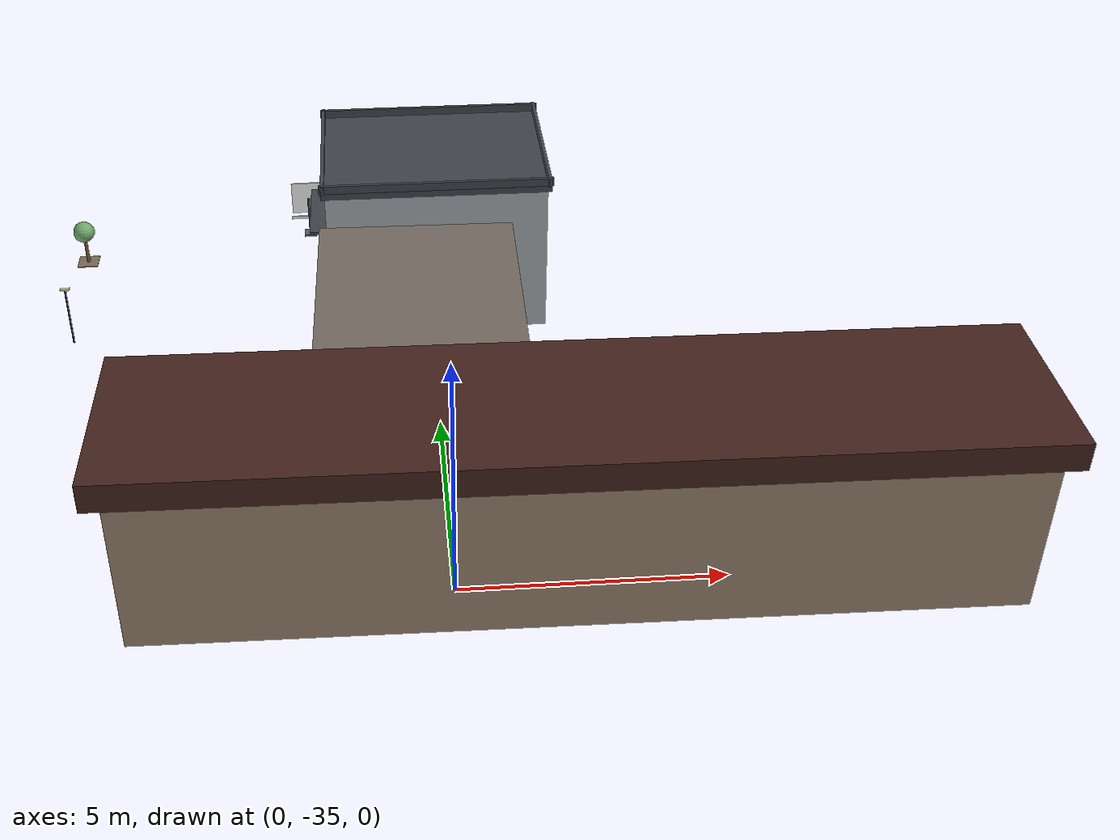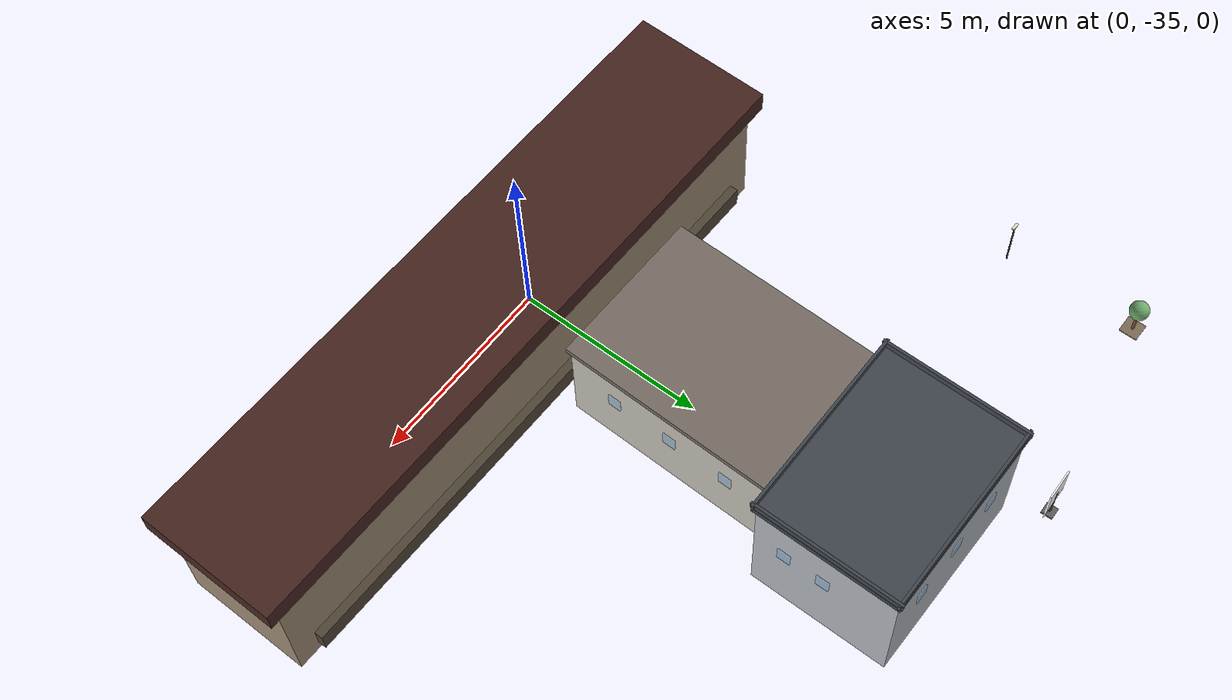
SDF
<sdf version="1.10">
 <world name="city">
  <model name="warehouse_east">
   <static>true</static>
   <pose>-0.351175260543823 -29.409130859375 0 0 0 -1.58832997653702</pose>
   <link name="link">
    <collision name="body_col">
     <pose>0 0 1.3 0 0 0</pose>
     <geometry><box><size>5.6 4 2.6</size></box></geometry>
    </collision>
    <visual name="body_vis">
     <pose>0 0 1.3 0 0 0</pose>
     <geometry><box><size>5.6 4 2.6</size></box></geometry>
     <material>
      <ambient>0.75999999 0.74000001 0.699999988 1</ambient>
      <diffuse>0.75999999 0.74000001 0.699999988 1</diffuse>
      <specular>0.0799999982 0.0799999982 0.0799999982 1</specular>
     </material>
    </visual>
    <collision name="roof_col">
     <pose>0 0 2.67 0 0 0</pose>
     <geometry><box><size>5.76 4.16 0.14</size></box></geometry>
    </collision>
    <visual name="roof_vis">
     <pose>0 0 2.67 0 0 0</pose>
     <geometry><box><size>5.76 4.16 0.14</size></box></geometry>
     <material>
      <ambient>0.479999989 0.439999998 0.400000006 1</ambient>
      <diffuse>0.479999989 0.439999998 0.400000006 1</diffuse>
      <specular>0.0799999982 0.0799999982 0.0799999982 1</specular>
     </material>
    </visual>
    <visual name="door_vis">
     <pose>-2.816 0 0.48 0 0 0</pose>
     <geometry><box><size>0.04 0.52 0.96</size></box></geometry>
     <material>
      <ambient>0.319999993 0.219999999 0.159999996 1</ambient>
      <diffuse>0.319999993 0.219999999 0.159999996 1</diffuse>
      <specular>0.0799999982 0.0799999982 0.0799999982 1</specular>
     </material>
    </visual>
    <visual name="win_west_0">
     <pose>-2.812 -1.12 1.612 0 0 0</pose>
     <geometry><box><size>0.032 0.34 0.4</size></box></geometry>
     <material>
      <ambient>0.550000012 0.720000029 0.879999995 0.550000012</ambient>
      <diffuse>0.550000012 0.720000029 0.879999995 0.550000012</diffuse>
      <specular>0.0799999982 0.0799999982 0.0799999982 1</specular>
      <transparency>0.35</transparency>
     </material>
    </visual>
    <visual name="win_west_1">
     <pose>-2.812 0 1.612 0 0 0</pose>
     <geometry><box><size>0.032 0.34 0.4</size></box></geometry>
     <material>
      <ambient>0.550000012 0.720000029 0.879999995 0.550000012</ambient>
      <diffuse>0.550000012 0.720000029 0.879999995 0.550000012</diffuse>
      <specular>0.0799999982 0.0799999982 0.0799999982 1</specular>
      <transparency>0.35</transparency>
     </material>
    </visual>
    <visual name="win_west_2">
     <pose>-2.812 1.12 1.612 0 0 0</pose>
     <geometry><box><size>0.032 0.34 0.4</size></box></geometry>
     <material>
      <ambient>0.550000012 0.720000029 0.879999995 0.550000012</ambient>
      <diffuse>0.550000012 0.720000029 0.879999995 0.550000012</diffuse>
      <specular>0.0799999982 0.0799999982 0.0799999982 1</specular>
      <transparency>0.35</transparency>
     </material>
    </visual>
    <visual name="win_south_0">
     <pose>-1.568 -2.012 1.612 0 0 0</pose>
     <geometry><box><size>0.34 0.032 0.4</size></box></geometry>
     <material>
      <ambient>0.550000012 0.720000029 0.879999995 0.550000012</ambient>
      <diffuse>0.550000012 0.720000029 0.879999995 0.550000012</diffuse>
      <specular>0.0799999982 0.0799999982 0.0799999982 1</specular>
      <transparency>0.35</transparency>
     </material>
    </visual>
    <visual name="win_south_1">
     <pose>0 -2.012 1.612 0 0 0</pose>
     <geometry><box><size>0.34 0.032 0.4</size></box></geometry>
     <material>
      <ambient>0.550000012 0.720000029 0.879999995 0.550000012</ambient>
      <diffuse>0.550000012 0.720000029 0.879999995 0.550000012</diffuse>
      <specular>0.0799999982 0.0799999982 0.0799999982 1</specular>
      <transparency>0.35</transparency>
     </material>
    </visual>
    <visual name="win_south_2">
     <pose>1.568 -2.012 1.612 0 0 0</pose>
     <geometry><box><size>0.34 0.032 0.4</size></box></geometry>
     <material>
      <ambient>0.550000012 0.720000029 0.879999995 0.550000012</ambient>
      <diffuse>0.550000012 0.720000029 0.879999995 0.550000012</diffuse>
      <specular>0.0799999982 0.0799999982 0.0799999982 1</specular>
      <transparency>0.35</transparency>
     </material>
    </visual>
    <visual name="win_east_0">
     <pose>2.812 -1.12 1.612 0 0 0</pose>
     <geometry><box><size>0.032 0.34 0.4</size></box></geometry>
     <material>
      <ambient>0.550000012 0.720000029 0.879999995 0.550000012</ambient>
      <diffuse>0.550000012 0.720000029 0.879999995 0.550000012</diffuse>
      <specular>0.0799999982 0.0799999982 0.0799999982 1</specular>
      <transparency>0.35</transparency>
     </material>
    </visual>
    <visual name="win_east_1">
     <pose>2.812 0 1.612 0 0 0</pose>
     <geometry><box><size>0.032 0.34 0.4</size></box></geometry>
     <material>
      <ambient>0.550000012 0.720000029 0.879999995 0.550000012</ambient>
      <diffuse>0.550000012 0.720000029 0.879999995 0.550000012</diffuse>
      <specular>0.0799999982 0.0799999982 0.0799999982 1</specular>
      <transparency>0.35</transparency>
     </material>
    </visual>
    <visual name="win_north_0">
     <pose>-1.568 2.012 1.612 0 0 0</pose>
     <geometry><box><size>0.34 0.032 0.4</size></box></geometry>
     <material>
      <ambient>0.550000012 0.720000029 0.879999995 0.550000012</ambient>
      <diffuse>0.550000012 0.720000029 0.879999995 0.550000012</diffuse>
      <specular>0.0799999982 0.0799999982 0.0799999982 1</specular>
      <transparency>0.35</transparency>
     </material>
    </visual>
    <visual name="win_north_1">
     <pose>0 2.012 1.612 0 0 0</pose>
     <geometry><box><size>0.34 0.032 0.4</size></box></geometry>
     <material>
      <ambient>0.550000012 0.720000029 0.879999995 0.550000012</ambient>
      <diffuse>0.550000012 0.720000029 0.879999995 0.550000012</diffuse>
      <specular>0.0799999982 0.0799999982 0.0799999982 1</specular>
      <transparency>0.35</transparency>
     </material>
    </visual>
    <visual name="win_north_2">
     <pose>1.568 2.012 1.612 0 0 0</pose>
     <geometry><box><size>0.34 0.032 0.4</size></box></geometry>
     <material>
      <ambient>0.550000012 0.720000029 0.879999995 0.550000012</ambient>
      <diffuse>0.550000012 0.720000029 0.879999995 0.550000012</diffuse>
      <specular>0.0799999982 0.0799999982 0.0799999982 1</specular>
      <transparency>0.35</transparency>
     </material>
    </visual>
    <inertial>
     <mass>1</mass>
     <inertia><ixx>1</ixx><ixy>0</ixy><ixz>0</ixz><iyy>1</iyy><iyz>0</iyz><izz>1</izz></inertia>
    </inertial>
   </link>
  </model>
  <model name="tree_4">
   <static>true</static>
   <pose>-8.14185562133789 -22.9132400512695 0 0 0 0</pose>
   <link name="link">
    <collision name="soil_col">
     <pose>0 0 0.012 0 0 0</pose>
     <geometry><box><size>0.48 0.48 0.024</size></box></geometry>
    </collision>
    <visual name="soil_vis">
     <pose>0 0 0.012 0 0 0</pose>
     <geometry><box><size>0.48 0.48 0.024</size></box></geometry>
     <material>
      <ambient>0.5 0.439999998 0.349999994 1</ambient>
      <diffuse>0.5 0.439999998 0.349999994 1</diffuse>
      <specular>0.0799999982 0.0799999982 0.0799999982 1</specular>
     </material>
    </visual>
    <collision name="trunk_col">
     <pose>0 0 0.36 0 0 0</pose>
     <geometry><cylinder><radius>0.04</radius><length>0.72</length></cylinder></geometry>
    </collision>
    <visual name="trunk_vis">
     <pose>0 0 0.36 0 0 0</pose>
     <geometry><cylinder><radius>0.04</radius><length>0.72</length></cylinder></geometry>
     <material>
      <ambient>0.449999988 0.310000002 0.180000007 1</ambient>
      <diffuse>0.449999988 0.310000002 0.180000007 1</diffuse>
      <specular>0.0799999982 0.0799999982 0.0799999982 1</specular>
     </material>
    </visual>
    <visual name="crown_vis">
     <pose>0 0 0.84 0 0 0</pose>
     <geometry><sphere><radius>0.248</radius></sphere></geometry>
     <material>
      <ambient>0.449999988 0.680000007 0.439999998 1</ambient>
      <diffuse>0.449999988 0.680000007 0.439999998 1</diffuse>
      <specular>0.0799999982 0.0799999982 0.0799999982 1</specular>
     </material>
    </visual>
    <inertial>
     <mass>1</mass>
     <inertia><ixx>1</ixx><ixy>0</ixy><ixz>0</ixz><iyy>1</iyy><iyz>0</iyz><izz>1</izz></inertia>
    </inertial>
   </link>
  </model>
  <model name="tree_17">
   <static>true</static>
   <pose>-2.569580078125 -32.3598693847656 0 0 0 0</pose>
   <link name="link">
    <collision name="soil_col">
     <pose>0 0 0.012 0 0 0</pose>
     <geometry><box><size>0.48 0.48 0.024</size></box></geometry>
    </collision>
    <visual name="soil_vis">
     <pose>0 0 0.012 0 0 0</pose>
     <geometry><box><size>0.48 0.48 0.024</size></box></geometry>
     <material>
      <ambient>0.5 0.439999998 0.349999994 1</ambient>
      <diffuse>0.5 0.439999998 0.349999994 1</diffuse>
      <specular>0.0799999982 0.0799999982 0.0799999982 1</specular>
     </material>
    </visual>
    <collision name="trunk_col">
     <pose>0 0 0.36 0 0 0</pose>
     <geometry><cylinder><radius>0.04</radius><length>0.72</length></cylinder></geometry>
    </collision>
    <visual name="trunk_vis">
     <pose>0 0 0.36 0 0 0</pose>
     <geometry><cylinder><radius>0.04</radius><length>0.72</length></cylinder></geometry>
     <material>
      <ambient>0.449999988 0.310000002 0.180000007 1</ambient>
      <diffuse>0.449999988 0.310000002 0.180000007 1</diffuse>
      <specular>0.0799999982 0.0799999982 0.0799999982 1</specular>
     </material>
    </visual>
    <visual name="crown_vis">
     <pose>0 0 0.84 0 0 0</pose>
     <geometry><sphere><radius>0.248</radius></sphere></geometry>
     <material>
      <ambient>0.449999988 0.680000007 0.439999998 1</ambient>
      <diffuse>0.449999988 0.680000007 0.439999998 1</diffuse>
      <specular>0.0799999982 0.0799999982 0.0799999982 1</specular>
     </material>
    </visual>
    <inertial>
     <mass>1</mass>
     <inertia><ixx>1</ixx><ixy>0</ixy><ixz>0</ixz><iyy>1</iyy><iyz>0</iyz><izz>1</izz></inertia>
    </inertial>
   </link>
  </model>
  <model name="lamp_2">
   <static>true</static>
   <pose>-8 -26.4 0 0 0 0</pose>
   <link name="link">
    <collision name="pole_col">
     <pose>0 0 0.68 0 0 0</pose>
     <geometry><cylinder><radius>0.02</radius><length>1.36</length></cylinder></geometry>
    </collision>
    <visual name="pole_vis">
     <pose>0 0 0.68 0 0 0</pose>
     <geometry><cylinder><radius>0.02</radius><length>1.36</length></cylinder></geometry>
     <material>
      <ambient>0.25 0.25 0.270000011 1</ambient>
      <diffuse>0.25 0.25 0.270000011 1</diffuse>
      <specular>0.0799999982 0.0799999982 0.0799999982 1</specular>
     </material>
    </visual>
    <visual name="head_vis">
     <pose>0 0 1.408 0 0 0</pose>
     <geometry><box><size>0.2 0.072 0.04</size></box></geometry>
     <material>
      <ambient>0.920000017 0.910000026 0.779999971 1</ambient>
      <diffuse>0.920000017 0.910000026 0.779999971 1</diffuse>
      <specular>0.0799999982 0.0799999982 0.0799999982 1</specular>
     </material>
    </visual>
    <inertial>
     <mass>1</mass>
     <inertia><ixx>1</ixx><ixy>0</ixy><ixz>0</ixz><iyy>1</iyy><iyz>0</iyz><izz>1</izz></inertia>
    </inertial>
   </link>
  </model>
  <model name="house_3_qr_sign">
   <static>true</static>
   <pose>-2.8127893447876 -21.9516036987305 0 0 0 -3.11188000008491</pose>
   <link name="link">
    <collision name="post_col">
     <pose>0 0 0.5 0 0 0</pose>
     <geometry><box><size>0.056 0.056 1</size></box></geometry>
    </collision>
    <visual name="post_vis">
     <pose>0 0 0.5 0 0 0</pose>
     <geometry><box><size>0.056 0.056 1</size></box></geometry>
     <material>
      <ambient>0.239999995 0.239999995 0.239999995 1</ambient>
      <diffuse>0.239999995 0.239999995 0.239999995 1</diffuse>
      <specular>0.0799999982 0.0799999982 0.0799999982 1</specular>
     </material>
    </visual>
    <collision name="base_col">
     <pose>0 0 0.024 0 0 0</pose>
     <geometry><box><size>0.3 0.3 0.048</size></box></geometry>
    </collision>
    <visual name="base_vis">
     <pose>0 0 0.024 0 0 0</pose>
     <geometry><box><size>0.3 0.3 0.048</size></box></geometry>
     <material>
      <ambient>0.379999995 0.379999995 0.379999995 1</ambient>
      <diffuse>0.379999995 0.379999995 0.379999995 1</diffuse>
      <specular>0.0799999982 0.0799999982 0.0799999982 1</specular>
     </material>
    </visual>
    <visual name="back_vis">
     <pose>0 0 0.48 0 0 0</pose>
     <geometry><box><size>0.86 0.024 0.072</size></box></geometry>
     <material>
      <ambient>0.920000017 0.920000017 0.920000017 1</ambient>
      <diffuse>0.920000017 0.920000017 0.920000017 1</diffuse>
      <specular>0.0500000007 0.0500000007 0.0500000007 1</specular>
     </material>
    </visual>
    <visual name="qr_vis">
     <pose>0 0 1.02 0 0 0</pose>
     <geometry><box><size>0.8 0.04 0.8</size></box></geometry>
     <material>
      <ambient>1 1 1 1</ambient>
      <diffuse>1 1 1 1</diffuse>
      <specular>0.0500000007 0.0500000007 0.0500000007 1</specular>
      <pbr><metal><metalness>0.0</metalness><roughness>1.0</roughness></metal></pbr>
     </material>
    </visual>
    <inertial>
     <mass>1</mass>
     <inertia><ixx>1</ixx><ixy>0</ixy><ixz>0</ixz><iyy>1</iyy><iyz>0</iyz><izz>1</izz></inertia>
    </inertial>
   </link>
  </model>
  <model name="gallery_long_rowhouse_strip">
   <static>true</static>
   <pose>2.22983207702637 -34.4648803710937 0 0 0 -0.0139955215584395</pose>
   <link name="body">
    <collision name="collision">
     <pose>0 0 1.6 0 0 0</pose>
     <geometry><box><size>16 3.2 3.2</size></box></geometry>
    </collision>
    <visual name="main">
     <pose>0 0 1.6 0 0 0</pose>
     <geometry><box><size>16 3.2 3.2</size></box></geometry>
     <material>
      <ambient>0.620000005 0.540000021 0.449999988 1</ambient>
      <diffuse>0.620000005 0.540000021 0.449999988 1</diffuse>
      <specular>0.0500000007 0.0500000007 0.0500000007 1</specular>
     </material>
    </visual>
    <visual name="roof">
     <pose>0 0 3.48 0 0 0</pose>
     <geometry><box><size>16.6 3.6 0.56</size></box></geometry>
     <material>
      <ambient>0.280000001 0.150000006 0.129999995 1</ambient>
      <diffuse>0.280000001 0.150000006 0.129999995 1</diffuse>
      <specular>0.0399999991 0.0399999991 0.0399999991 1</specular>
     </material>
    </visual>
    <visual name="porch_line">
     <pose>0 1.68 0.56 0 0 0</pose>
     <geometry><box><size>14.8 0.28 0.56</size></box></geometry>
     <material>
      <ambient>0.319999993 0.280000001 0.219999999 1</ambient>
      <diffuse>0.319999993 0.280000001 0.219999999 1</diffuse>
      <specular>0.0299999993 0.0299999993 0.0299999993 1</specular>
     </material>
    </visual>
    <inertial>
     <mass>1</mass>
     <inertia><ixx>1</ixx><ixy>0</ixy><ixz>0</ixz><iyy>1</iyy><iyz>0</iyz><izz>1</izz></inertia>
    </inertial>
   </link>
  </model>
  <model name="office_east_3">
   <static>true</static>
   <pose>0.161051595211029 -24.6566528320313 0 0 0 0</pose>
   <link name="link">
    <collision name="body_col">
     <pose>0 0 1.72 0 0 0</pose>
     <geometry><box><size>4.8 3.6 3.44</size></box></geometry>
    </collision>
    <visual name="body_vis">
     <pose>0 0 1.72 0 0 0</pose>
     <geometry><box><size>4.8 3.6 3.44</size></box></geometry>
     <material>
      <ambient>0.689999998 0.709999979 0.730000019 1</ambient>
      <diffuse>0.689999998 0.709999979 0.730000019 1</diffuse>
      <specular>0.0799999982 0.0799999982 0.0799999982 1</specular>
     </material>
    </visual>
    <collision name="roof_col">
     <pose>0 0 3.51 0 0 0</pose>
     <geometry><box><size>4.96 3.76 0.14</size></box></geometry>
    </collision>
    <visual name="roof_vis">
     <pose>0 0 3.51 0 0 0</pose>
     <geometry><box><size>4.96 3.76 0.14</size></box></geometry>
     <material>
      <ambient>0.25999999 0.280000001 0.310000002 1</ambient>
      <diffuse>0.25999999 0.280000001 0.310000002 1</diffuse>
      <specular>0.0799999982 0.0799999982 0.0799999982 1</specular>
     </material>
    </visual>
    <visual name="p1_vis">
     <pose>0 1.836 3.668 0 0 0</pose>
     <geometry><box><size>5.02 0.072 0.18</size></box></geometry>
     <material>
      <ambient>0.25999999 0.280000001 0.310000002 1</ambient>
      <diffuse>0.25999999 0.280000001 0.310000002 1</diffuse>
      <specular>0.0799999982 0.0799999982 0.0799999982 1</specular>
     </material>
    </visual>
    <visual name="p2_vis">
     <pose>0 -1.836 3.668 0 0 0</pose>
     <geometry><box><size>5.02 0.072 0.18</size></box></geometry>
     <material>
      <ambient>0.25999999 0.280000001 0.310000002 1</ambient>
      <diffuse>0.25999999 0.280000001 0.310000002 1</diffuse>
      <specular>0.0799999982 0.0799999982 0.0799999982 1</specular>
     </material>
    </visual>
    <visual name="p3_vis">
     <pose>2.436 0 3.668 0 0 0</pose>
     <geometry><box><size>0.072 3.82 0.18</size></box></geometry>
     <material>
      <ambient>0.25999999 0.280000001 0.310000002 1</ambient>
      <diffuse>0.25999999 0.280000001 0.310000002 1</diffuse>
      <specular>0.0799999982 0.0799999982 0.0799999982 1</specular>
     </material>
    </visual>
    <visual name="p4_vis">
     <pose>-2.436 0 3.668 0 0 0</pose>
     <geometry><box><size>0.072 3.82 0.18</size></box></geometry>
     <material>
      <ambient>0.25999999 0.280000001 0.310000002 1</ambient>
      <diffuse>0.25999999 0.280000001 0.310000002 1</diffuse>
      <specular>0.0799999982 0.0799999982 0.0799999982 1</specular>
     </material>
    </visual>
    <visual name="door_vis">
     <pose>-2.416 0 0.48 0 0 0</pose>
     <geometry><box><size>0.04 0.52 0.96</size></box></geometry>
     <material>
      <ambient>0.319999993 0.219999999 0.159999996 1</ambient>
      <diffuse>0.319999993 0.219999999 0.159999996 1</diffuse>
      <specular>0.0799999982 0.0799999982 0.0799999982 1</specular>
     </material>
    </visual>
    <visual name="win_west_0">
     <pose>-2.412 -1.008 2.1328 0 0 0</pose>
     <geometry><box><size>0.032 0.34 0.4</size></box></geometry>
     <material>
      <ambient>0.550000012 0.720000029 0.879999995 0.550000012</ambient>
      <diffuse>0.550000012 0.720000029 0.879999995 0.550000012</diffuse>
      <specular>0.0799999982 0.0799999982 0.0799999982 1</specular>
      <transparency>0.35</transparency>
     </material>
    </visual>
    <visual name="win_west_1">
     <pose>-2.412 0 2.1328 0 0 0</pose>
     <geometry><box><size>0.032 0.34 0.4</size></box></geometry>
     <material>
      <ambient>0.550000012 0.720000029 0.879999995 0.550000012</ambient>
      <diffuse>0.550000012 0.720000029 0.879999995 0.550000012</diffuse>
      <specular>0.0799999982 0.0799999982 0.0799999982 1</specular>
      <transparency>0.35</transparency>
     </material>
    </visual>
    <visual name="win_west_2">
     <pose>-2.412 1.008 2.1328 0 0 0</pose>
     <geometry><box><size>0.032 0.34 0.4</size></box></geometry>
     <material>
      <ambient>0.550000012 0.720000029 0.879999995 0.550000012</ambient>
      <diffuse>0.550000012 0.720000029 0.879999995 0.550000012</diffuse>
      <specular>0.0799999982 0.0799999982 0.0799999982 1</specular>
      <transparency>0.35</transparency>
     </material>
    </visual>
    <visual name="win_south_0">
     <pose>-1.344 -1.812 2.1328 0 0 0</pose>
     <geometry><box><size>0.34 0.032 0.4</size></box></geometry>
     <material>
      <ambient>0.550000012 0.720000029 0.879999995 0.550000012</ambient>
      <diffuse>0.550000012 0.720000029 0.879999995 0.550000012</diffuse>
      <specular>0.0799999982 0.0799999982 0.0799999982 1</specular>
      <transparency>0.35</transparency>
     </material>
    </visual>
    <visual name="win_south_1">
     <pose>0 -1.812 2.1328 0 0 0</pose>
     <geometry><box><size>0.34 0.032 0.4</size></box></geometry>
     <material>
      <ambient>0.550000012 0.720000029 0.879999995 0.550000012</ambient>
      <diffuse>0.550000012 0.720000029 0.879999995 0.550000012</diffuse>
      <specular>0.0799999982 0.0799999982 0.0799999982 1</specular>
      <transparency>0.35</transparency>
     </material>
    </visual>
    <visual name="win_south_2">
     <pose>1.344 -1.812 2.1328 0 0 0</pose>
     <geometry><box><size>0.34 0.032 0.4</size></box></geometry>
     <material>
      <ambient>0.550000012 0.720000029 0.879999995 0.550000012</ambient>
      <diffuse>0.550000012 0.720000029 0.879999995 0.550000012</diffuse>
      <specular>0.0799999982 0.0799999982 0.0799999982 1</specular>
      <transparency>0.35</transparency>
     </material>
    </visual>
    <visual name="win_east_0">
     <pose>2.412 -1.008 2.1328 0 0 0</pose>
     <geometry><box><size>0.032 0.34 0.4</size></box></geometry>
     <material>
      <ambient>0.550000012 0.720000029 0.879999995 0.550000012</ambient>
      <diffuse>0.550000012 0.720000029 0.879999995 0.550000012</diffuse>
      <specular>0.0799999982 0.0799999982 0.0799999982 1</specular>
      <transparency>0.35</transparency>
     </material>
    </visual>
    <visual name="win_east_1">
     <pose>2.412 0 2.1328 0 0 0</pose>
     <geometry><box><size>0.032 0.34 0.4</size></box></geometry>
     <material>
      <ambient>0.550000012 0.720000029 0.879999995 0.550000012</ambient>
      <diffuse>0.550000012 0.720000029 0.879999995 0.550000012</diffuse>
      <specular>0.0799999982 0.0799999982 0.0799999982 1</specular>
      <transparency>0.35</transparency>
     </material>
    </visual>
    <visual name="win_north_0">
     <pose>-1.344 1.812 2.1328 0 0 0</pose>
     <geometry><box><size>0.34 0.032 0.4</size></box></geometry>
     <material>
      <ambient>0.550000012 0.720000029 0.879999995 0.550000012</ambient>
      <diffuse>0.550000012 0.720000029 0.879999995 0.550000012</diffuse>
      <specular>0.0799999982 0.0799999982 0.0799999982 1</specular>
      <transparency>0.35</transparency>
     </material>
    </visual>
    <visual name="win_north_1">
     <pose>0 1.812 2.1328 0 0 0</pose>
     <geometry><box><size>0.34 0.032 0.4</size></box></geometry>
     <material>
      <ambient>0.550000012 0.720000029 0.879999995 0.550000012</ambient>
      <diffuse>0.550000012 0.720000029 0.879999995 0.550000012</diffuse>
      <specular>0.0799999982 0.0799999982 0.0799999982 1</specular>
      <transparency>0.35</transparency>
     </material>
    </visual>
    <visual name="win_north_2">
     <pose>1.344 1.812 2.1328 0 0 0</pose>
     <geometry><box><size>0.34 0.032 0.4</size></box></geometry>
     <material>
      <ambient>0.550000012 0.720000029 0.879999995 0.550000012</ambient>
      <diffuse>0.550000012 0.720000029 0.879999995 0.550000012</diffuse>
      <specular>0.0799999982 0.0799999982 0.0799999982 1</specular>
      <transparency>0.35</transparency>
     </material>
    </visual>
    <visual name="awning">
     <pose>-2.62 0 2.1328 0 0 0</pose>
     <geometry><box><size>0.36 1.98 0.064</size></box></geometry>
     <material>
      <ambient>0.25999999 0.280000001 0.310000002 1</ambient>
      <diffuse>0.25999999 0.280000001 0.310000002 1</diffuse>
      <specular>0.0799999982 0.0799999982 0.0799999982 1</specular>
     </material>
    </visual>
    <inertial>
     <mass>1</mass>
     <inertia><ixx>1</ixx><ixy>0</ixy><ixz>0</ixz><iyy>1</iyy><iyz>0</iyz><izz>1</izz></inertia>
    </inertial>
   </link>
  </model>
 </world>
</sdf>
